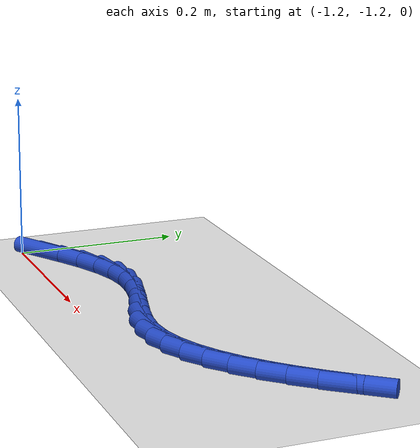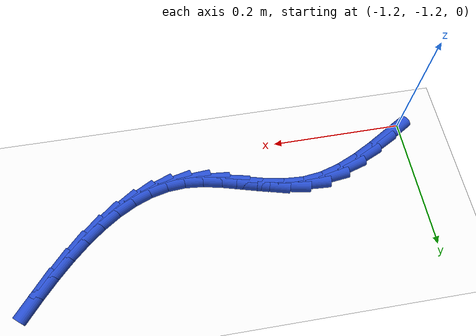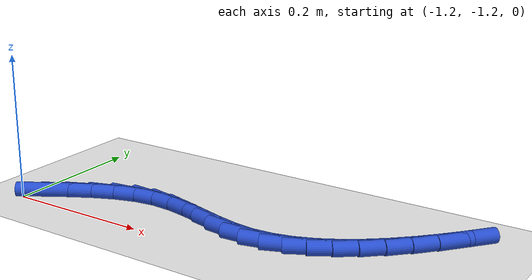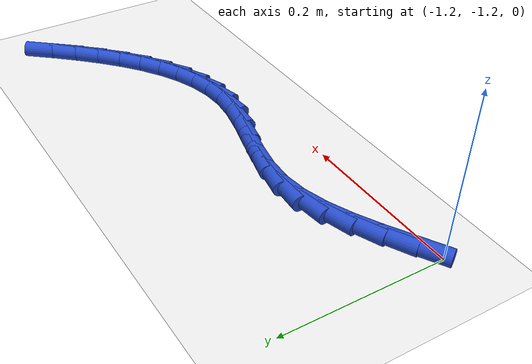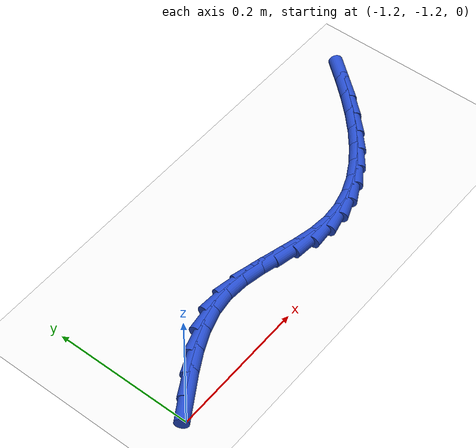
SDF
<sdf version="1.6">
 <world name="default">
  <model name="ground_plane">
   <static>1</static>
   <link name="link">
    <collision name="collision">
     <geometry><plane><normal>0 0 1</normal><size>100 100</size></plane></geometry>
     <surface><friction><ode><mu>100</mu><mu2>50</mu2></ode></friction></surface>
    </collision>
    <visual name="visual">
     <cast_shadows>0</cast_shadows>
     <geometry><plane><normal>0 0 1</normal><size>100 100</size></plane></geometry>
     <material>
      <script><uri>file://media/materials/scripts/gazebo.material</uri><name>Gazebo/WhiteGlow</name></script>
     </material>
    </visual>
   </link>
  </model>
  <model name="line">
   <link name="link_189">
    <pose>-1.1760186005719169 -1.1806017255223853 0.01 0 1.57 0.5384713840657952</pose>
    <collision name="collision">
     <geometry><cylinder><radius>0.01</radius><length>0.08</length></cylinder></geometry>
    </collision>
    <visual name="visual">
     <material>
      <script><name>Gazebo/Blue</name><uri>file://media/materials/scripts/gazebo.material</uri></script>
     </material>
     <geometry><cylinder><radius>0.01</radius><length>0.08</length></cylinder></geometry>
    </visual>
   </link>
   <link name="link_190">
    <pose>-1.1471061539737422 -1.163330769963049 0.01 0 1.57 0.4940578632191254</pose>
    <collision name="collision">
     <geometry><cylinder><radius>0.01</radius><length>0.08</length></cylinder></geometry>
    </collision>
    <visual name="visual">
     <material>
      <script><name>Gazebo/Blue</name><uri>file://media/materials/scripts/gazebo.material</uri></script>
     </material>
     <geometry><cylinder><radius>0.01</radius><length>0.08</length></cylinder></geometry>
    </visual>
   </link>
   <link name="link_191">
    <pose>-1.1177665114181745 -1.1475280917278825 0.01 0 1.57 0.4146546832772983</pose>
    <collision name="collision">
     <geometry><cylinder><radius>0.01</radius><length>0.08</length></cylinder></geometry>
    </collision>
    <visual name="visual">
     <material>
      <script><name>Gazebo/Blue</name><uri>file://media/materials/scripts/gazebo.material</uri></script>
     </material>
     <geometry><cylinder><radius>0.01</radius><length>0.08</length></cylinder></geometry>
    </visual>
   </link>
   <link name="link_192">
    <pose>-1.0880996875474669 -1.134469454931072 0.01 0 1.57 0.29362310591581336</pose>
    <collision name="collision">
     <geometry><cylinder><radius>0.01</radius><length>0.08</length></cylinder></geometry>
    </collision>
    <visual name="visual">
     <material>
      <script><name>Gazebo/Blue</name><uri>file://media/materials/scripts/gazebo.material</uri></script>
     </material>
     <geometry><cylinder><radius>0.01</radius><length>0.08</length></cylinder></geometry>
    </visual>
   </link>
   <link name="link_193">
    <pose>-1.0582056970038747 -1.125430623686808 0.01 0 1.57 0.1243112362466227</pose>
    <collision name="collision">
     <geometry><cylinder><radius>0.01</radius><length>0.08</length></cylinder></geometry>
    </collision>
    <visual name="visual">
     <material>
      <script><name>Gazebo/Blue</name><uri>file://media/materials/scripts/gazebo.material</uri></script>
     </material>
     <geometry><cylinder><radius>0.01</radius><length>0.08</length></cylinder></geometry>
    </visual>
   </link>
   <link name="link_194">
    <pose>-1.0281846622831996 -1.1216793285349596 0.01 0 1.57 -0.06034209516687701</pose>
    <collision name="collision">
     <geometry><cylinder><radius>0.01</radius><length>0.08</length></cylinder></geometry>
    </collision>
    <visual name="visual">
     <material>
      <script><name>Gazebo/Blue</name><uri>file://media/materials/scripts/gazebo.material</uri></script>
     </material>
     <geometry><cylinder><radius>0.01</radius><length>0.08</length></cylinder></geometry>
    </visual>
   </link>
   <link name="link_195">
    <pose>-0.9981499891035219 -1.1234938865475341 0.01 0 1.57 -0.18921465256207792</pose>
    <collision name="collision">
     <geometry><cylinder><radius>0.01</radius><length>0.08</length></cylinder></geometry>
    </collision>
    <visual name="visual">
     <material>
      <script><name>Gazebo/Blue</name><uri>file://media/materials/scripts/gazebo.material</uri></script>
     </material>
     <geometry><cylinder><radius>0.01</radius><length>0.08</length></cylinder></geometry>
    </visual>
   </link>
   <link name="link_196">
    <pose>-0.9682410074240707 -1.129221622993198 0.01 0 1.57 -0.2562130671941186</pose>
    <collision name="collision">
     <geometry><cylinder><radius>0.01</radius><length>0.08</length></cylinder></geometry>
    </collision>
    <visual name="visual">
     <material>
      <script><name>Gazebo/Blue</name><uri>file://media/materials/scripts/gazebo.material</uri></script>
     </material>
     <geometry><cylinder><radius>0.01</radius><length>0.08</length></cylinder></geometry>
    </visual>
   </link>
   <link name="link_197">
    <pose>-0.9386000434292835 -1.1369866864512024 0.01 0 1.57 -0.2648043031809934</pose>
    <collision name="collision">
     <geometry><cylinder><radius>0.01</radius><length>0.08</length></cylinder></geometry>
    </collision>
    <visual name="visual">
     <material>
      <script><name>Gazebo/Blue</name><uri>file://media/materials/scripts/gazebo.material</uri></script>
     </material>
     <geometry><cylinder><radius>0.01</radius><length>0.08</length></cylinder></geometry>
    </visual>
   </link>
   <link name="link_198">
    <pose>-0.9093694233035975 -1.1449132255007972 0.01 0 1.57 -0.21332225818241257</pose>
    <collision name="collision">
     <geometry><cylinder><radius>0.01</radius><length>0.08</length></cylinder></geometry>
    </collision>
    <visual name="visual">
     <material>
      <script><name>Gazebo/Blue</name><uri>file://media/materials/scripts/gazebo.material</uri></script>
     </material>
     <geometry><cylinder><radius>0.01</radius><length>0.08</length></cylinder></geometry>
    </visual>
   </link>
   <link name="link_199">
    <pose>-0.8806914732314495 -1.1511253887212323 0.01 0 1.57 -0.09390020714228071</pose>
    <collision name="collision">
     <geometry><cylinder><radius>0.01</radius><length>0.08</length></cylinder></geometry>
    </collision>
    <visual name="visual">
     <material>
      <script><name>Gazebo/Blue</name><uri>file://media/materials/scripts/gazebo.material</uri></script>
     </material>
     <geometry><cylinder><radius>0.01</radius><length>0.08</length></cylinder></geometry>
    </visual>
   </link>
   <link name="link_200">
    <pose>-0.8527075234216357 -1.1537608377653679 0.01 0 1.57 0.07210143910643313</pose>
    <collision name="collision">
     <geometry><cylinder><radius>0.01</radius><length>0.08</length></cylinder></geometry>
    </collision>
    <visual name="visual">
     <material>
      <script><name>Gazebo/Blue</name><uri>file://media/materials/scripts/gazebo.material</uri></script>
     </material>
     <geometry><cylinder><radius>0.01</radius><length>0.08</length></cylinder></geometry>
    </visual>
   </link>
   <link name="link_201">
    <pose>-0.8254971184556152 -1.1517955215853795 0.01 0 1.57 0.23288753546709196</pose>
    <collision name="collision">
     <geometry><cylinder><radius>0.01</radius><length>0.08</length></cylinder></geometry>
    </collision>
    <visual name="visual">
     <material>
      <script><name>Gazebo/Blue</name><uri>file://media/materials/scripts/gazebo.material</uri></script>
     </material>
     <geometry><cylinder><radius>0.01</radius><length>0.08</length></cylinder></geometry>
    </visual>
   </link>
   <link name="link_202">
    <pose>-0.7990428510661052 -1.1455208002889214 0.01 0 1.57 0.37675098170105936</pose>
    <collision name="collision">
     <geometry><cylinder><radius>0.01</radius><length>0.08</length></cylinder></geometry>
    </collision>
    <visual name="visual">
     <material>
      <script><name>Gazebo/Blue</name><uri>file://media/materials/scripts/gazebo.material</uri></script>
     </material>
     <geometry><cylinder><radius>0.01</radius><length>0.08</length></cylinder></geometry>
    </visual>
   </link>
   <link name="link_203">
    <pose>-0.773318834092631 -1.1353430864168323 0.01 0 1.57 0.5001845119753499</pose>
    <collision name="collision">
     <geometry><cylinder><radius>0.01</radius><length>0.08</length></cylinder></geometry>
    </collision>
    <visual name="visual">
     <material>
      <script><name>Gazebo/Blue</name><uri>file://media/materials/scripts/gazebo.material</uri></script>
     </material>
     <geometry><cylinder><radius>0.01</radius><length>0.08</length></cylinder></geometry>
    </visual>
   </link>
   <link name="link_204">
    <pose>-0.748299180374719 -1.1216687925099509 0.01 0 1.57 0.6031210370191787</pose>
    <collision name="collision">
     <geometry><cylinder><radius>0.01</radius><length>0.08</length></cylinder></geometry>
    </collision>
    <visual name="visual">
     <material>
      <script><name>Gazebo/Blue</name><uri>file://media/materials/scripts/gazebo.material</uri></script>
     </material>
     <geometry><cylinder><radius>0.01</radius><length>0.08</length></cylinder></geometry>
    </visual>
   </link>
   <link name="link_205">
    <pose>-0.7239580027518956 -1.104904331109116 0.01 0 1.57 0.6874124007890612</pose>
    <collision name="collision">
     <geometry><cylinder><radius>0.01</radius><length>0.08</length></cylinder></geometry>
    </collision>
    <visual name="visual">
     <material>
      <script><name>Gazebo/Blue</name><uri>file://media/materials/scripts/gazebo.material</uri></script>
     </material>
     <geometry><cylinder><radius>0.01</radius><length>0.08</length></cylinder></geometry>
    </visual>
   </link>
   <link name="link_206">
    <pose>-0.7002694140636865 -1.0854561147551662 0.01 0 1.57 0.755569898303449</pose>
    <collision name="collision">
     <geometry><cylinder><radius>0.01</radius><length>0.08</length></cylinder></geometry>
    </collision>
    <visual name="visual">
     <material>
      <script><name>Gazebo/Blue</name><uri>file://media/materials/scripts/gazebo.material</uri></script>
     </material>
     <geometry><cylinder><radius>0.01</radius><length>0.08</length></cylinder></geometry>
    </visual>
   </link>
   <link name="link_207">
    <pose>-0.6772075271496183 -1.0637305559889407 0.01 0 1.57 0.8100452873509972</pose>
    <collision name="collision">
     <geometry><cylinder><radius>0.01</radius><length>0.08</length></cylinder></geometry>
    </collision>
    <visual name="visual">
     <material>
      <script><name>Gazebo/Blue</name><uri>file://media/materials/scripts/gazebo.material</uri></script>
     </material>
     <geometry><cylinder><radius>0.01</radius><length>0.08</length></cylinder></geometry>
    </visual>
   </link>
   <link name="link_208">
    <pose>-0.6547464548492166 -1.0401340673512776 0.01 0 1.57 0.8529216323364059</pose>
    <collision name="collision">
     <geometry><cylinder><radius>0.01</radius><length>0.08</length></cylinder></geometry>
    </collision>
    <visual name="visual">
     <material>
      <script><name>Gazebo/Blue</name><uri>file://media/materials/scripts/gazebo.material</uri></script>
     </material>
     <geometry><cylinder><radius>0.01</radius><length>0.08</length></cylinder></geometry>
    </visual>
   </link>
   <link name="link_209">
    <pose>-0.632860310002008 -1.0150730613830166 0.01 0 1.57 0.8858258668665827</pose>
    <collision name="collision">
     <geometry><cylinder><radius>0.01</radius><length>0.08</length></cylinder></geometry>
    </collision>
    <visual name="visual">
     <material>
      <script><name>Gazebo/Blue</name><uri>file://media/materials/scripts/gazebo.material</uri></script>
     </material>
     <geometry><cylinder><radius>0.01</radius><length>0.08</length></cylinder></geometry>
    </visual>
   </link>
  </model>
 </world>
</sdf>
